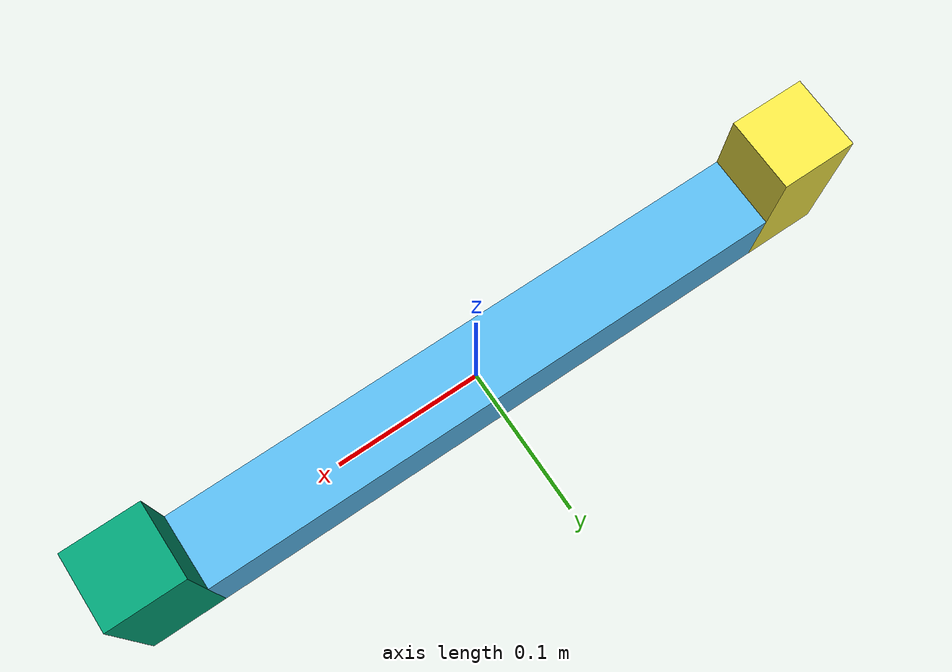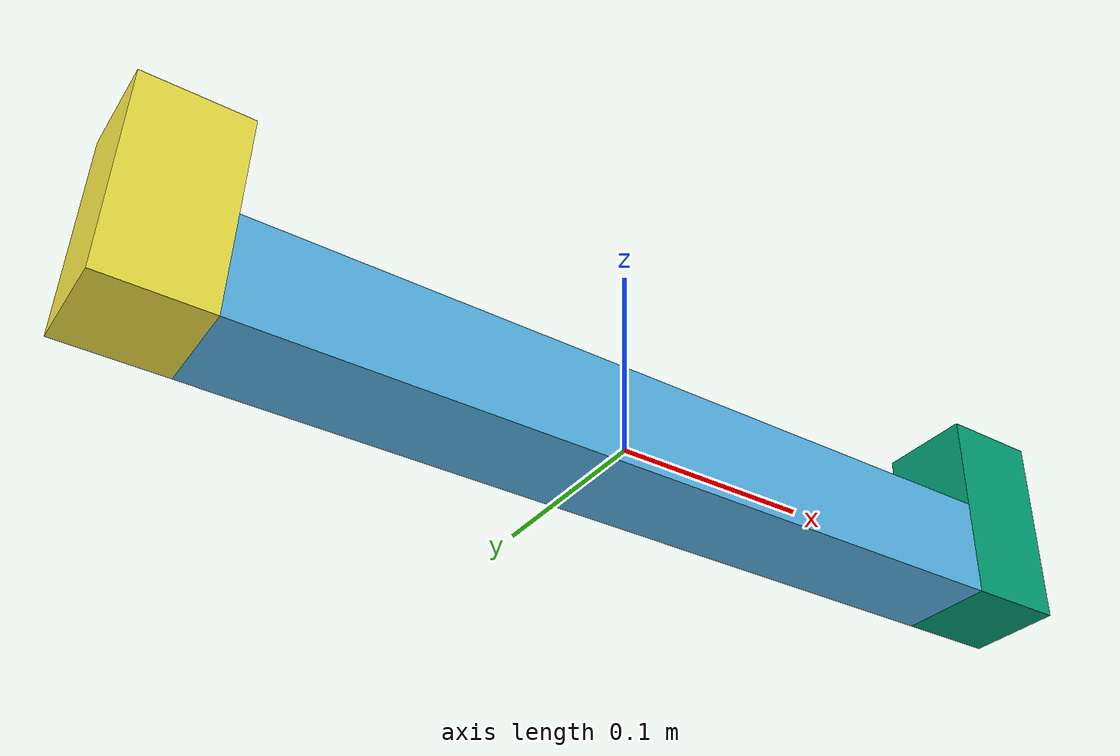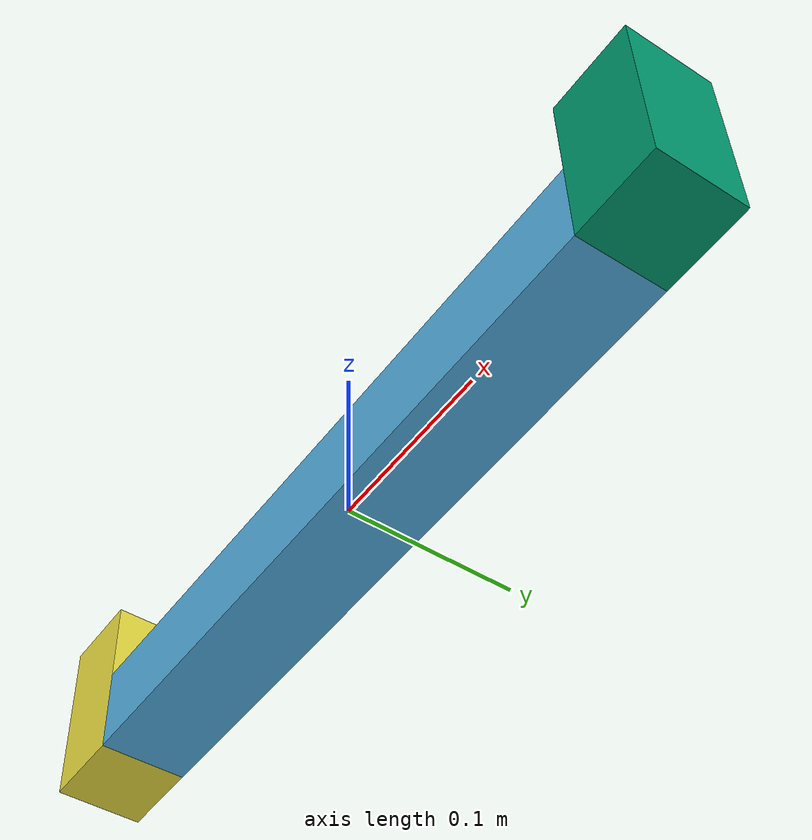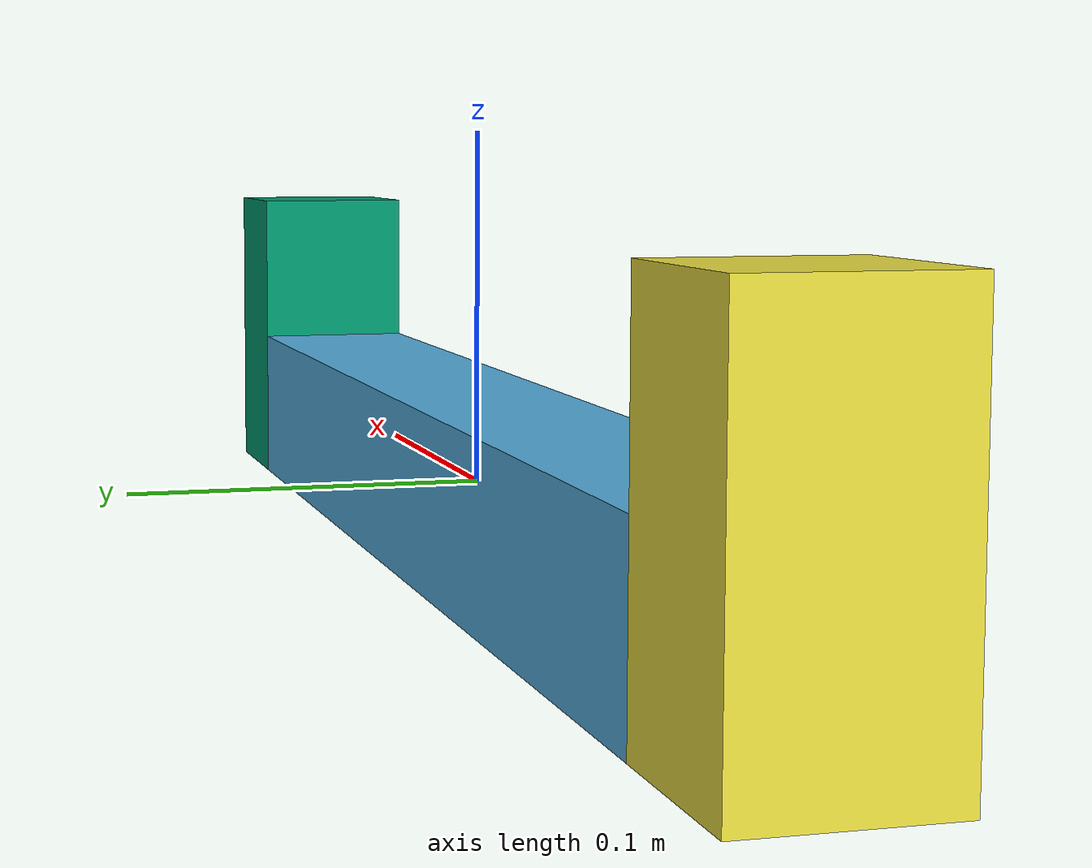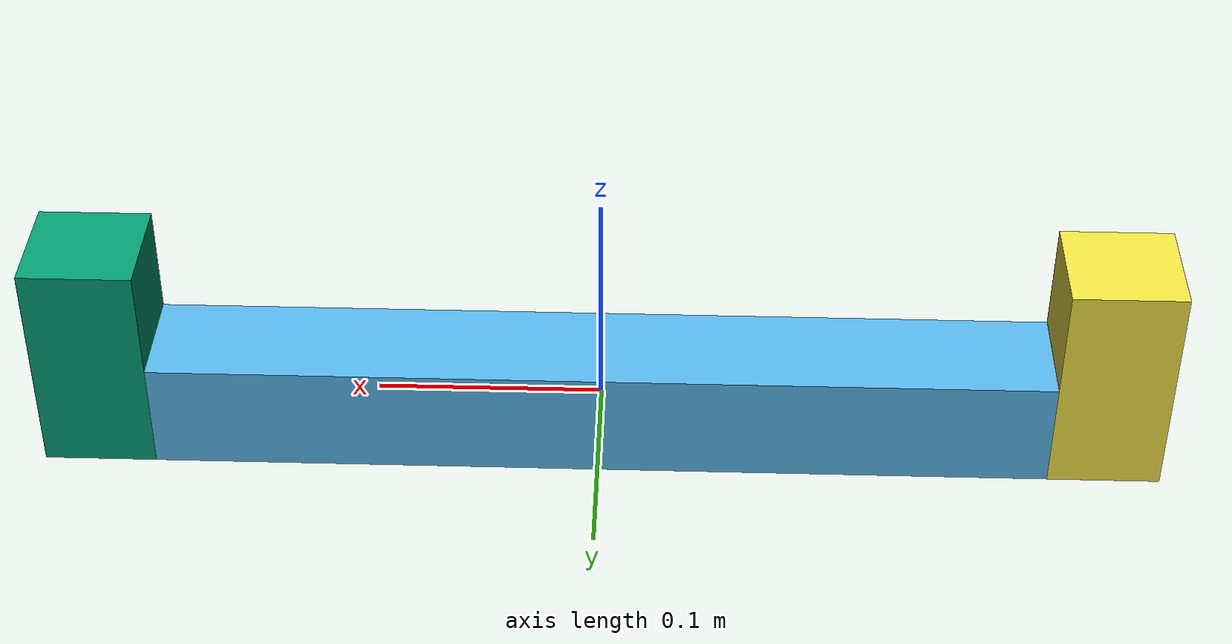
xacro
<?xml version="1.0" encoding="utf-8"?>
<robot xmlns:xacro="http://www.ros.org/wiki/xacro" name="conveyor_segment">
  <xacro:arg name="conveyor_width" default="0.4" />
  <xacro:arg name="conveyor_length" default="1.0" />
  <xacro:arg name="conveyor_segment_length" default="0.05" />
  <xacro:arg name="conveyor_wall_height" default="0.1" />
  <xacro:arg name="conveyor_speed" default="0.3" />
  <xacro:arg name="conveyor_root" default="0.0" />

  <xacro:macro name="conveyor_segment_wall" params="name">
    <link name="${name}">
      <visual>
  	<geometry>
  	  <box size="0.05 $(arg conveyor_segment_length) $(arg conveyor_wall_height)" />
  	</geometry>
      </visual>
      <collision>
  	<geometry>
  	  <box size="0.05 $(arg conveyor_segment_length) $(arg conveyor_wall_height)" />
  	</geometry>
      </collision>
    </link>
    <inertia>
      <inertial>
  	<mass value="10" />
  	<inertia ixx="1.0" ixy="0.0" ixz="0.0"
  		 iyy="1.0" iyz="0.0"
  		 izz="1.0" />
      </inertial>
    </inertia>
  </xacro:macro>
  <xacro:macro name="conveyor_segment_wall_joint" params="name child_link width height reflect">
    <joint name="${name}" type="fixed">
      <parent link="conveyor_segment_base" />
      <child link="${child_link}" />
      <origin xyz="${reflect*(width/2 + 0.025)} 0 ${height/2 - 0.025}" rpy="0 0 0" />
    </joint>
  </xacro:macro>

  <link name="world" />
  <link name="conveyor_segment_base">
    <visual>
      <geometry>
  	<box size="$(arg conveyor_width) $(arg conveyor_segment_length) 0.05" />
      </geometry>
    </visual>
    <collision>
      <geometry>
    	<box size="$(arg conveyor_width) $(arg conveyor_segment_length) 0.05" />
      </geometry>
    </collision>
    <inertial>
      <mass value="10" />
      <inertia ixx="1.0" ixy="0.0" ixz="0.0"
  	       iyy="1.0" iyz="0.0"
  	       izz="1.0" />
    </inertial>
  </link>
  <xacro:conveyor_segment_wall name="conveyor_segment_left_wall" />
  <xacro:conveyor_segment_wall name="conveyor_segment_right_wall" />

  <xacro:conveyor_segment_wall_joint name="left_wall_joint"
  				     child_link="conveyor_segment_left_wall"
  				     width="$(arg conveyor_width)"
				     height="$(arg conveyor_wall_height)"
				     reflect="1" />
  <xacro:conveyor_segment_wall_joint name="right_wall_joint"
  				     child_link="conveyor_segment_right_wall"
  				     width="$(arg conveyor_width)"
				     height="$(arg conveyor_wall_height)"
				     reflect="-1" />
  <joint name="base_joint" type="prismatic">
    <limit lower="-100" upper="100" velocity="100" effort="100" />
    <parent link="world" />
    <child link="conveyor_segment_base" />
    <origin xyz="0 0 0" rpy="0 0 0" />
    <axis xyz="0 1 0" />
  </joint>

  <gazebo>
    <plugin name="conveyor_plugin" filename="libConveyorBeltPlugin.so">
      <speed>$(arg conveyor_speed)</speed>
      <length>$(arg conveyor_length)</length>
      <root>$(arg conveyor_root)</root>
    </plugin>
  </gazebo>

</robot>
